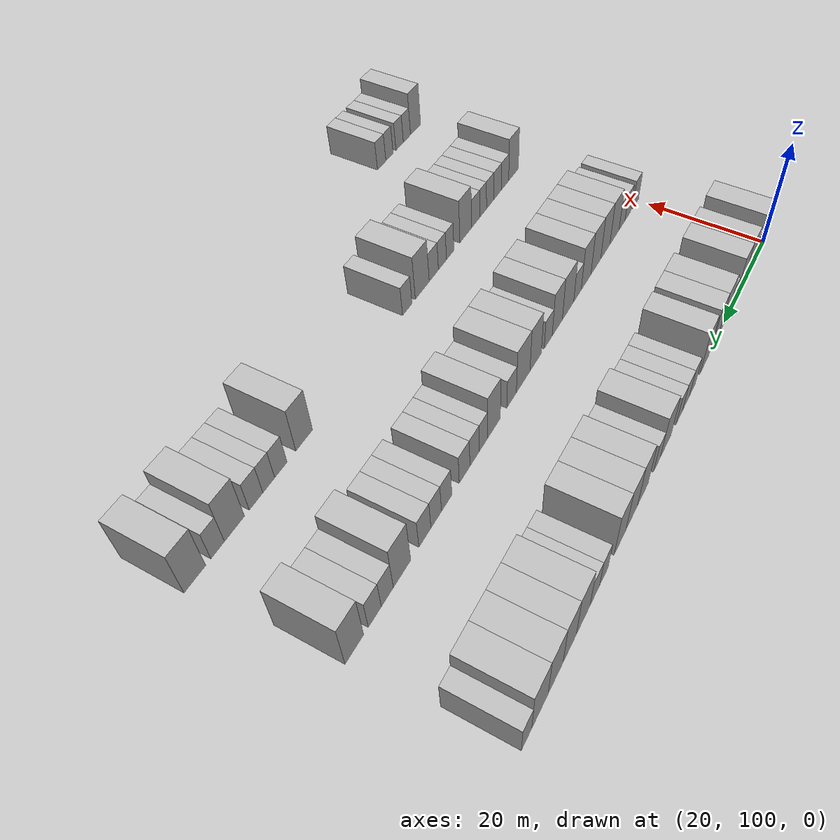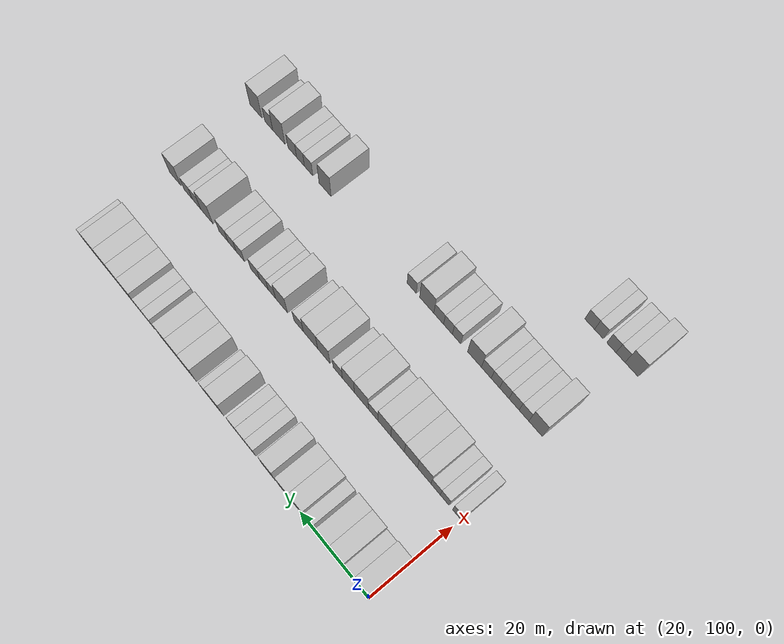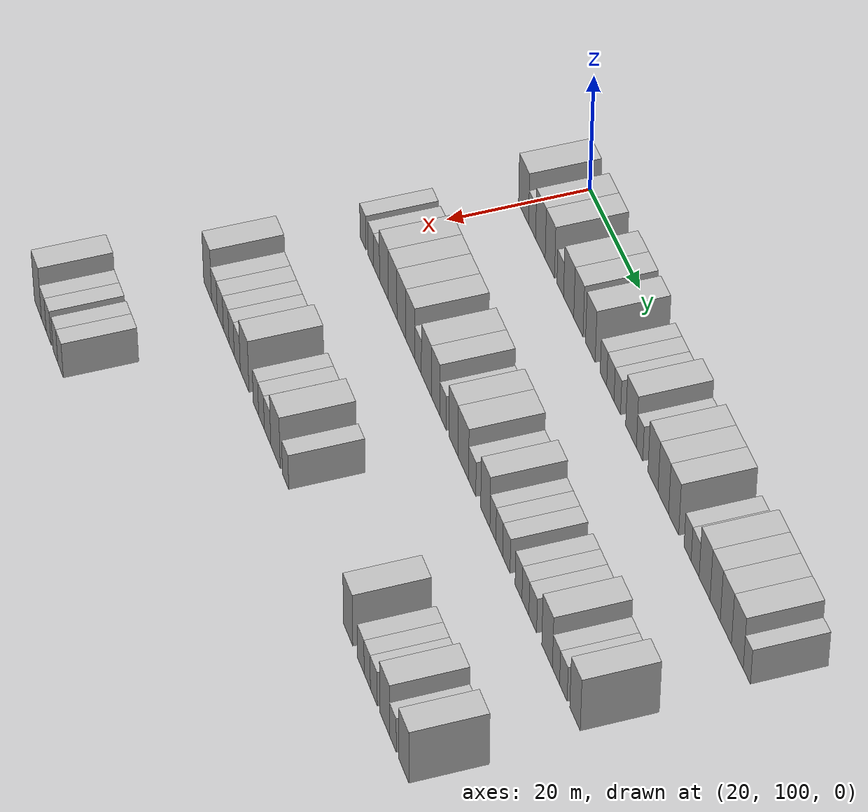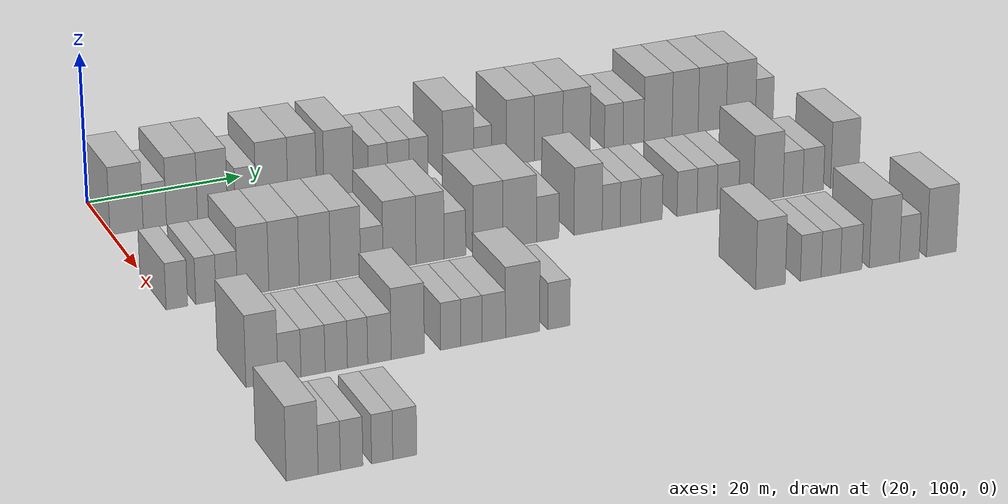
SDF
<sdf version="1.6">
 <world name="default">
  <model name="building_126">
   <static>1</static>
   <pose>25.0000 101.8972 0 0.000000 0.000000 0.000000</pose>
   <link name="link">
    <pose>0 0 4.50 0 0 0</pose>
    <collision name="collision"><geometry><box><size>10.0000 4.2282 9.0000</size></box></geometry></collision>
    <visual name="visual">
     <cast_shadows>0</cast_shadows>
     <geometry><box><size>10.0000 4.2282 9.0000</size></box></geometry>
     <material>
      <script>
       <uri>model://HANNAS_wall/materials/scripts</uri>
       <uri>model://HANNAS_wall/materials/textures</uri>
       <name>vrc/HANNAS_wall</name>
      </script>
     </material>
    </visual>
   </link>
  </model>
  <model name="building_127">
   <static>1</static>
   <pose>25.0000 105.4983 0 0.000000 0.000000 0.000000</pose>
   <link name="link">
    <pose>0 0 3.00 0 0 0</pose>
    <collision name="collision"><geometry><box><size>10.0000 2.9740 6.0000</size></box></geometry></collision>
    <visual name="visual">
     <cast_shadows>0</cast_shadows>
     <geometry><box><size>10.0000 2.9740 6.0000</size></box></geometry>
     <material>
      <script>
       <uri>model://HANNAS_wall/materials/scripts</uri>
       <uri>model://HANNAS_wall/materials/textures</uri>
       <name>vrc/HANNAS_wall</name>
      </script>
     </material>
    </visual>
   </link>
  </model>
  <model name="building_128">
   <static>1</static>
   <pose>25.0000 108.9910 0 0.000000 0.000000 0.000000</pose>
   <link name="link">
    <pose>0 0 4.50 0 0 0</pose>
    <collision name="collision"><geometry><box><size>10.0000 4.0114 9.0000</size></box></geometry></collision>
    <visual name="visual">
     <cast_shadows>0</cast_shadows>
     <geometry><box><size>10.0000 4.0114 9.0000</size></box></geometry>
     <material>
      <script>
       <uri>model://HANNAS_wall/materials/scripts</uri>
       <uri>model://HANNAS_wall/materials/textures</uri>
       <name>vrc/HANNAS_wall</name>
      </script>
     </material>
    </visual>
   </link>
  </model>
  <model name="building_129">
   <static>1</static>
   <pose>25.0000 112.9370 0 0.000000 0.000000 0.000000</pose>
   <link name="link">
    <pose>0 0 4.50 0 0 0</pose>
    <collision name="collision"><geometry><box><size>10.0000 3.8806 9.0000</size></box></geometry></collision>
    <visual name="visual">
     <cast_shadows>0</cast_shadows>
     <geometry><box><size>10.0000 3.8806 9.0000</size></box></geometry>
     <material>
      <script>
       <uri>model://HANNAS_wall/materials/scripts</uri>
       <uri>model://HANNAS_wall/materials/textures</uri>
       <name>vrc/HANNAS_wall</name>
      </script>
     </material>
    </visual>
   </link>
  </model>
  <model name="building_130">
   <static>1</static>
   <pose>25.0000 117.2325 0 0.000000 0.000000 0.000000</pose>
   <link name="link">
    <pose>0 0 3.00 0 0 0</pose>
    <collision name="collision"><geometry><box><size>10.0000 2.7104 6.0000</size></box></geometry></collision>
    <visual name="visual">
     <cast_shadows>0</cast_shadows>
     <geometry><box><size>10.0000 2.7104 6.0000</size></box></geometry>
     <material>
      <script>
       <uri>model://HANNAS_wall/materials/scripts</uri>
       <uri>model://HANNAS_wall/materials/textures</uri>
       <name>vrc/HANNAS_wall</name>
      </script>
     </material>
    </visual>
   </link>
  </model>
  <model name="building_131">
   <static>1</static>
   <pose>25.0000 120.6726 0 0.000000 0.000000 0.000000</pose>
   <link name="link">
    <pose>0 0 4.50 0 0 0</pose>
    <collision name="collision"><geometry><box><size>10.0000 4.1699 9.0000</size></box></geometry></collision>
    <visual name="visual">
     <cast_shadows>0</cast_shadows>
     <geometry><box><size>10.0000 4.1699 9.0000</size></box></geometry>
     <material>
      <script>
       <uri>model://HANNAS_wall/materials/scripts</uri>
       <uri>model://HANNAS_wall/materials/textures</uri>
       <name>vrc/HANNAS_wall</name>
      </script>
     </material>
    </visual>
   </link>
  </model>
  <model name="building_132">
   <static>1</static>
   <pose>25.0000 124.6380 0 0.000000 0.000000 0.000000</pose>
   <link name="link">
    <pose>0 0 4.50 0 0 0</pose>
    <collision name="collision"><geometry><box><size>10.0000 3.7609 9.0000</size></box></geometry></collision>
    <visual name="visual">
     <cast_shadows>0</cast_shadows>
     <geometry><box><size>10.0000 3.7609 9.0000</size></box></geometry>
     <material>
      <script>
       <uri>model://HANNAS_wall/materials/scripts</uri>
       <uri>model://HANNAS_wall/materials/textures</uri>
       <name>vrc/HANNAS_wall</name>
      </script>
     </material>
    </visual>
   </link>
  </model>
  <model name="building_133">
   <static>1</static>
   <pose>25.0000 129.4610 0 0.000000 0.000000 0.000000</pose>
   <link name="link">
    <pose>0 0 4.50 0 0 0</pose>
    <collision name="collision"><geometry><box><size>10.0000 3.8851 9.0000</size></box></geometry></collision>
    <visual name="visual">
     <cast_shadows>0</cast_shadows>
     <geometry><box><size>10.0000 3.8851 9.0000</size></box></geometry>
     <material>
      <script>
       <uri>model://HANNAS_wall/materials/scripts</uri>
       <uri>model://HANNAS_wall/materials/textures</uri>
       <name>vrc/HANNAS_wall</name>
      </script>
     </material>
    </visual>
   </link>
  </model>
  <model name="building_134">
   <static>1</static>
   <pose>25.0000 134.6868 0 0.000000 0.000000 0.000000</pose>
   <link name="link">
    <pose>0 0 3.00 0 0 0</pose>
    <collision name="collision"><geometry><box><size>10.0000 2.5665 6.0000</size></box></geometry></collision>
    <visual name="visual">
     <cast_shadows>0</cast_shadows>
     <geometry><box><size>10.0000 2.5665 6.0000</size></box></geometry>
     <material>
      <script>
       <uri>model://HANNAS_wall/materials/scripts</uri>
       <uri>model://HANNAS_wall/materials/textures</uri>
       <name>vrc/HANNAS_wall</name>
      </script>
     </material>
    </visual>
   </link>
  </model>
  <model name="building_135">
   <static>1</static>
   <pose>25.0000 137.4162 0 0.000000 0.000000 0.000000</pose>
   <link name="link">
    <pose>0 0 3.00 0 0 0</pose>
    <collision name="collision"><geometry><box><size>10.0000 2.8924 6.0000</size></box></geometry></collision>
    <visual name="visual">
     <cast_shadows>0</cast_shadows>
     <geometry><box><size>10.0000 2.8924 6.0000</size></box></geometry>
     <material>
      <script>
       <uri>model://HANNAS_wall/materials/scripts</uri>
       <uri>model://HANNAS_wall/materials/textures</uri>
       <name>vrc/HANNAS_wall</name>
      </script>
     </material>
    </visual>
   </link>
  </model>
  <model name="building_136">
   <static>1</static>
   <pose>25.0000 140.1349 0 0.000000 0.000000 0.000000</pose>
   <link name="link">
    <pose>0 0 3.00 0 0 0</pose>
    <collision name="collision"><geometry><box><size>10.0000 2.5449 6.0000</size></box></geometry></collision>
    <visual name="visual">
     <cast_shadows>0</cast_shadows>
     <geometry><box><size>10.0000 2.5449 6.0000</size></box></geometry>
     <material>
      <script>
       <uri>model://HANNAS_wall/materials/scripts</uri>
       <uri>model://HANNAS_wall/materials/textures</uri>
       <name>vrc/HANNAS_wall</name>
      </script>
     </material>
    </visual>
   </link>
  </model>
  <model name="building_137">
   <static>1</static>
   <pose>25.0000 145.4909 0 0.000000 0.000000 0.000000</pose>
   <link name="link">
    <pose>0 0 4.50 0 0 0</pose>
    <collision name="collision"><geometry><box><size>10.0000 4.1672 9.0000</size></box></geometry></collision>
    <visual name="visual">
     <cast_shadows>0</cast_shadows>
     <geometry><box><size>10.0000 4.1672 9.0000</size></box></geometry>
     <material>
      <script>
       <uri>model://HANNAS_wall/materials/scripts</uri>
       <uri>model://HANNAS_wall/materials/textures</uri>
       <name>vrc/HANNAS_wall</name>
      </script>
     </material>
    </visual>
   </link>
  </model>
  <model name="building_138">
   <static>1</static>
   <pose>25.0000 148.8001 0 0.000000 0.000000 0.000000</pose>
   <link name="link">
    <pose>0 0 3.00 0 0 0</pose>
    <collision name="collision"><geometry><box><size>10.0000 2.4511 6.0000</size></box></geometry></collision>
    <visual name="visual">
     <cast_shadows>0</cast_shadows>
     <geometry><box><size>10.0000 2.4511 6.0000</size></box></geometry>
     <material>
      <script>
       <uri>model://HANNAS_wall/materials/scripts</uri>
       <uri>model://HANNAS_wall/materials/textures</uri>
       <name>vrc/HANNAS_wall</name>
      </script>
     </material>
    </visual>
   </link>
  </model>
  <model name="building_139">
   <static>1</static>
   <pose>25.0000 153.9330 0 0.000000 0.000000 0.000000</pose>
   <link name="link">
    <pose>0 0 4.50 0 0 0</pose>
    <collision name="collision"><geometry><box><size>10.0000 3.8147 9.0000</size></box></geometry></collision>
    <visual name="visual">
     <cast_shadows>0</cast_shadows>
     <geometry><box><size>10.0000 3.8147 9.0000</size></box></geometry>
     <material>
      <script>
       <uri>model://HANNAS_wall/materials/scripts</uri>
       <uri>model://HANNAS_wall/materials/textures</uri>
       <name>vrc/HANNAS_wall</name>
      </script>
     </material>
    </visual>
   </link>
  </model>
  <model name="building_140">
   <static>1</static>
   <pose>25.0000 157.8276 0 0.000000 0.000000 0.000000</pose>
   <link name="link">
    <pose>0 0 4.50 0 0 0</pose>
    <collision name="collision"><geometry><box><size>10.0000 3.9746 9.0000</size></box></geometry></collision>
    <visual name="visual">
     <cast_shadows>0</cast_shadows>
     <geometry><box><size>10.0000 3.9746 9.0000</size></box></geometry>
     <material>
      <script>
       <uri>model://HANNAS_wall/materials/scripts</uri>
       <uri>model://HANNAS_wall/materials/textures</uri>
       <name>vrc/HANNAS_wall</name>
      </script>
     </material>
    </visual>
   </link>
  </model>
  <model name="building_141">
   <static>1</static>
   <pose>25.0000 161.7132 0 0.000000 0.000000 0.000000</pose>
   <link name="link">
    <pose>0 0 4.50 0 0 0</pose>
    <collision name="collision"><geometry><box><size>10.0000 3.7965 9.0000</size></box></geometry></collision>
    <visual name="visual">
     <cast_shadows>0</cast_shadows>
     <geometry><box><size>10.0000 3.7965 9.0000</size></box></geometry>
     <material>
      <script>
       <uri>model://HANNAS_wall/materials/scripts</uri>
       <uri>model://HANNAS_wall/materials/textures</uri>
       <name>vrc/HANNAS_wall</name>
      </script>
     </material>
    </visual>
   </link>
  </model>
  <model name="building_142">
   <static>1</static>
   <pose>25.0000 166.9197 0 0.000000 0.000000 0.000000</pose>
   <link name="link">
    <pose>0 0 3.00 0 0 0</pose>
    <collision name="collision"><geometry><box><size>10.0000 2.6166 6.0000</size></box></geometry></collision>
    <visual name="visual">
     <cast_shadows>0</cast_shadows>
     <geometry><box><size>10.0000 2.6166 6.0000</size></box></geometry>
     <material>
      <script>
       <uri>model://HANNAS_wall/materials/scripts</uri>
       <uri>model://HANNAS_wall/materials/textures</uri>
       <name>vrc/HANNAS_wall</name>
      </script>
     </material>
    </visual>
   </link>
  </model>
  <model name="building_143">
   <static>1</static>
   <pose>25.0000 169.6854 0 0.000000 0.000000 0.000000</pose>
   <link name="link">
    <pose>0 0 3.00 0 0 0</pose>
    <collision name="collision"><geometry><box><size>10.0000 2.9149 6.0000</size></box></geometry></collision>
    <visual name="visual">
     <cast_shadows>0</cast_shadows>
     <geometry><box><size>10.0000 2.9149 6.0000</size></box></geometry>
     <material>
      <script>
       <uri>model://HANNAS_wall/materials/scripts</uri>
       <uri>model://HANNAS_wall/materials/textures</uri>
       <name>vrc/HANNAS_wall</name>
      </script>
     </material>
    </visual>
   </link>
  </model>
  <model name="building_144">
   <static>1</static>
   <pose>25.0000 173.1345 0 0.000000 0.000000 0.000000</pose>
   <link name="link">
    <pose>0 0 4.50 0 0 0</pose>
    <collision name="collision"><geometry><box><size>10.0000 3.9831 9.0000</size></box></geometry></collision>
    <visual name="visual">
     <cast_shadows>0</cast_shadows>
     <geometry><box><size>10.0000 3.9831 9.0000</size></box></geometry>
     <material>
      <script>
       <uri>model://HANNAS_wall/materials/scripts</uri>
       <uri>model://HANNAS_wall/materials/textures</uri>
       <name>vrc/HANNAS_wall</name>
      </script>
     </material>
    </visual>
   </link>
  </model>
  <model name="building_145">
   <static>1</static>
   <pose>25.0000 176.9775 0 0.000000 0.000000 0.000000</pose>
   <link name="link">
    <pose>0 0 4.50 0 0 0</pose>
    <collision name="collision"><geometry><box><size>10.0000 3.7030 9.0000</size></box></geometry></collision>
    <visual name="visual">
     <cast_shadows>0</cast_shadows>
     <geometry><box><size>10.0000 3.7030 9.0000</size></box></geometry>
     <material>
      <script>
       <uri>model://HANNAS_wall/materials/scripts</uri>
       <uri>model://HANNAS_wall/materials/textures</uri>
       <name>vrc/HANNAS_wall</name>
      </script>
     </material>
    </visual>
   </link>
  </model>
  <model name="building_146">
   <static>1</static>
   <pose>25.0000 180.8270 0 0.000000 0.000000 0.000000</pose>
   <link name="link">
    <pose>0 0 4.50 0 0 0</pose>
    <collision name="collision"><geometry><box><size>10.0000 3.9960 9.0000</size></box></geometry></collision>
    <visual name="visual">
     <cast_shadows>0</cast_shadows>
     <geometry><box><size>10.0000 3.9960 9.0000</size></box></geometry>
     <material>
      <script>
       <uri>model://HANNAS_wall/materials/scripts</uri>
       <uri>model://HANNAS_wall/materials/textures</uri>
       <name>vrc/HANNAS_wall</name>
      </script>
     </material>
    </visual>
   </link>
  </model>
  <model name="building_147">
   <static>1</static>
   <pose>25.0000 184.9330 0 0.000000 0.000000 0.000000</pose>
   <link name="link">
    <pose>0 0 4.50 0 0 0</pose>
    <collision name="collision"><geometry><box><size>10.0000 4.2160 9.0000</size></box></geometry></collision>
    <visual name="visual">
     <cast_shadows>0</cast_shadows>
     <geometry><box><size>10.0000 4.2160 9.0000</size></box></geometry>
     <material>
      <script>
       <uri>model://HANNAS_wall/materials/scripts</uri>
       <uri>model://HANNAS_wall/materials/textures</uri>
       <name>vrc/HANNAS_wall</name>
      </script>
     </material>
    </visual>
   </link>
  </model>
  <model name="building_148">
   <static>1</static>
   <pose>25.0000 188.3178 0 0.000000 0.000000 0.000000</pose>
   <link name="link">
    <pose>0 0 3.00 0 0 0</pose>
    <collision name="collision"><geometry><box><size>10.0000 2.5535 6.0000</size></box></geometry></collision>
    <visual name="visual">
     <cast_shadows>0</cast_shadows>
     <geometry><box><size>10.0000 2.5535 6.0000</size></box></geometry>
     <material>
      <script>
       <uri>model://HANNAS_wall/materials/scripts</uri>
       <uri>model://HANNAS_wall/materials/textures</uri>
       <name>vrc/HANNAS_wall</name>
      </script>
     </material>
    </visual>
   </link>
  </model>
  <model name="building_313">
   <static>1</static>
   <pose>47.0000 101.0420 0 0.000000 0.000000 0.000000</pose>
   <link name="link">
    <pose>0 0 3.00 0 0 0</pose>
    <collision name="collision"><geometry><box><size>10.0000 2.6449 6.0000</size></box></geometry></collision>
    <visual name="visual">
     <cast_shadows>0</cast_shadows>
     <geometry><box><size>10.0000 2.6449 6.0000</size></box></geometry>
     <material>
      <script>
       <uri>model://HANNAS_wall/materials/scripts</uri>
       <uri>model://HANNAS_wall/materials/textures</uri>
       <name>vrc/HANNAS_wall</name>
      </script>
     </material>
    </visual>
   </link>
  </model>
  <model name="building_314">
   <static>1</static>
   <pose>47.0000 104.6172 0 0.000000 0.000000 0.000000</pose>
   <link name="link">
    <pose>0 0 3.00 0 0 0</pose>
    <collision name="collision"><geometry><box><size>10.0000 2.5055 6.0000</size></box></geometry></collision>
    <visual name="visual">
     <cast_shadows>0</cast_shadows>
     <geometry><box><size>10.0000 2.5055 6.0000</size></box></geometry>
     <material>
      <script>
       <uri>model://HANNAS_wall/materials/scripts</uri>
       <uri>model://HANNAS_wall/materials/textures</uri>
       <name>vrc/HANNAS_wall</name>
      </script>
     </material>
    </visual>
   </link>
  </model>
  <model name="building_315">
   <static>1</static>
   <pose>47.0000 107.2020 0 0.000000 0.000000 0.000000</pose>
   <link name="link">
    <pose>0 0 3.00 0 0 0</pose>
    <collision name="collision"><geometry><box><size>10.0000 2.6642 6.0000</size></box></geometry></collision>
    <visual name="visual">
     <cast_shadows>0</cast_shadows>
     <geometry><box><size>10.0000 2.6642 6.0000</size></box></geometry>
     <material>
      <script>
       <uri>model://HANNAS_wall/materials/scripts</uri>
       <uri>model://HANNAS_wall/materials/textures</uri>
       <name>vrc/HANNAS_wall</name>
      </script>
     </material>
    </visual>
   </link>
  </model>
  <model name="building_316">
   <static>1</static>
   <pose>47.0000 110.4907 0 0.000000 0.000000 0.000000</pose>
   <link name="link">
    <pose>0 0 4.50 0 0 0</pose>
    <collision name="collision"><geometry><box><size>10.0000 3.9131 9.0000</size></box></geometry></collision>
    <visual name="visual">
     <cast_shadows>0</cast_shadows>
     <geometry><box><size>10.0000 3.9131 9.0000</size></box></geometry>
     <material>
      <script>
       <uri>model://HANNAS_wall/materials/scripts</uri>
       <uri>model://HANNAS_wall/materials/textures</uri>
       <name>vrc/HANNAS_wall</name>
      </script>
     </material>
    </visual>
   </link>
  </model>
  <model name="building_317">
   <static>1</static>
   <pose>47.0000 114.3489 0 0.000000 0.000000 0.000000</pose>
   <link name="link">
    <pose>0 0 4.50 0 0 0</pose>
    <collision name="collision"><geometry><box><size>10.0000 3.8033 9.0000</size></box></geometry></collision>
    <visual name="visual">
     <cast_shadows>0</cast_shadows>
     <geometry><box><size>10.0000 3.8033 9.0000</size></box></geometry>
     <material>
      <script>
       <uri>model://HANNAS_wall/materials/scripts</uri>
       <uri>model://HANNAS_wall/materials/textures</uri>
       <name>vrc/HANNAS_wall</name>
      </script>
     </material>
    </visual>
   </link>
  </model>
  <model name="building_318">
   <static>1</static>
   <pose>47.0000 118.2258 0 0.000000 0.000000 0.000000</pose>
   <link name="link">
    <pose>0 0 4.50 0 0 0</pose>
    <collision name="collision"><geometry><box><size>10.0000 3.9504 9.0000</size></box></geometry></collision>
    <visual name="visual">
     <cast_shadows>0</cast_shadows>
     <geometry><box><size>10.0000 3.9504 9.0000</size></box></geometry>
     <material>
      <script>
       <uri>model://HANNAS_wall/materials/scripts</uri>
       <uri>model://HANNAS_wall/materials/textures</uri>
       <name>vrc/HANNAS_wall</name>
      </script>
     </material>
    </visual>
   </link>
  </model>
  <model name="building_319">
   <static>1</static>
   <pose>47.0000 122.1043 0 0.000000 0.000000 0.000000</pose>
   <link name="link">
    <pose>0 0 4.50 0 0 0</pose>
    <collision name="collision"><geometry><box><size>10.0000 3.8067 9.0000</size></box></geometry></collision>
    <visual name="visual">
     <cast_shadows>0</cast_shadows>
     <geometry><box><size>10.0000 3.8067 9.0000</size></box></geometry>
     <material>
      <script>
       <uri>model://HANNAS_wall/materials/scripts</uri>
       <uri>model://HANNAS_wall/materials/textures</uri>
       <name>vrc/HANNAS_wall</name>
      </script>
     </material>
    </visual>
   </link>
  </model>
  <model name="building_320">
   <static>1</static>
   <pose>47.0000 125.4434 0 0.000000 0.000000 0.000000</pose>
   <link name="link">
    <pose>0 0 3.00 0 0 0</pose>
    <collision name="collision"><geometry><box><size>10.0000 2.8714 6.0000</size></box></geometry></collision>
    <visual name="visual">
     <cast_shadows>0</cast_shadows>
     <geometry><box><size>10.0000 2.8714 6.0000</size></box></geometry>
     <material>
      <script>
       <uri>model://HANNAS_wall/materials/scripts</uri>
       <uri>model://HANNAS_wall/materials/textures</uri>
       <name>vrc/HANNAS_wall</name>
      </script>
     </material>
    </visual>
   </link>
  </model>
  <model name="building_321">
   <static>1</static>
   <pose>47.0000 128.9827 0 0.000000 0.000000 0.000000</pose>
   <link name="link">
    <pose>0 0 4.50 0 0 0</pose>
    <collision name="collision"><geometry><box><size>10.0000 4.2073 9.0000</size></box></geometry></collision>
    <visual name="visual">
     <cast_shadows>0</cast_shadows>
     <geometry><box><size>10.0000 4.2073 9.0000</size></box></geometry>
     <material>
      <script>
       <uri>model://HANNAS_wall/materials/scripts</uri>
       <uri>model://HANNAS_wall/materials/textures</uri>
       <name>vrc/HANNAS_wall</name>
      </script>
     </material>
    </visual>
   </link>
  </model>
  <model name="building_322">
   <static>1</static>
   <pose>47.0000 132.9044 0 0.000000 0.000000 0.000000</pose>
   <link name="link">
    <pose>0 0 4.50 0 0 0</pose>
    <collision name="collision"><geometry><box><size>10.0000 3.6361 9.0000</size></box></geometry></collision>
    <visual name="visual">
     <cast_shadows>0</cast_shadows>
     <geometry><box><size>10.0000 3.6361 9.0000</size></box></geometry>
     <material>
      <script>
       <uri>model://HANNAS_wall/materials/scripts</uri>
       <uri>model://HANNAS_wall/materials/textures</uri>
       <name>vrc/HANNAS_wall</name>
      </script>
     </material>
    </visual>
   </link>
  </model>
  <model name="building_323">
   <static>1</static>
   <pose>47.0000 136.1226 0 0.000000 0.000000 0.000000</pose>
   <link name="link">
    <pose>0 0 3.00 0 0 0</pose>
    <collision name="collision"><geometry><box><size>10.0000 2.8003 6.0000</size></box></geometry></collision>
    <visual name="visual">
     <cast_shadows>0</cast_shadows>
     <geometry><box><size>10.0000 2.8003 6.0000</size></box></geometry>
     <material>
      <script>
       <uri>model://HANNAS_wall/materials/scripts</uri>
       <uri>model://HANNAS_wall/materials/textures</uri>
       <name>vrc/HANNAS_wall</name>
      </script>
     </material>
    </visual>
   </link>
  </model>
  <model name="building_324">
   <static>1</static>
   <pose>47.0000 140.4289 0 0.000000 0.000000 0.000000</pose>
   <link name="link">
    <pose>0 0 4.50 0 0 0</pose>
    <collision name="collision"><geometry><box><size>10.0000 3.8124 9.0000</size></box></geometry></collision>
    <visual name="visual">
     <cast_shadows>0</cast_shadows>
     <geometry><box><size>10.0000 3.8124 9.0000</size></box></geometry>
     <material>
      <script>
       <uri>model://HANNAS_wall/materials/scripts</uri>
       <uri>model://HANNAS_wall/materials/textures</uri>
       <name>vrc/HANNAS_wall</name>
      </script>
     </material>
    </visual>
   </link>
  </model>
  <model name="building_325">
   <static>1</static>
   <pose>47.0000 144.5449 0 0.000000 0.000000 0.000000</pose>
   <link name="link">
    <pose>0 0 4.50 0 0 0</pose>
    <collision name="collision"><geometry><box><size>10.0000 4.4196 9.0000</size></box></geometry></collision>
    <visual name="visual">
     <cast_shadows>0</cast_shadows>
     <geometry><box><size>10.0000 4.4196 9.0000</size></box></geometry>
     <material>
      <script>
       <uri>model://HANNAS_wall/materials/scripts</uri>
       <uri>model://HANNAS_wall/materials/textures</uri>
       <name>vrc/HANNAS_wall</name>
      </script>
     </material>
    </visual>
   </link>
  </model>
  <model name="building_326">
   <static>1</static>
   <pose>47.0000 148.2421 0 0.000000 0.000000 0.000000</pose>
   <link name="link">
    <pose>0 0 3.00 0 0 0</pose>
    <collision name="collision"><geometry><box><size>10.0000 2.9748 6.0000</size></box></geometry></collision>
    <visual name="visual">
     <cast_shadows>0</cast_shadows>
     <geometry><box><size>10.0000 2.9748 6.0000</size></box></geometry>
     <material>
      <script>
       <uri>model://HANNAS_wall/materials/scripts</uri>
       <uri>model://HANNAS_wall/materials/textures</uri>
       <name>vrc/HANNAS_wall</name>
      </script>
     </material>
    </visual>
   </link>
  </model>
  <model name="building_327">
   <static>1</static>
   <pose>47.0000 153.6075 0 0.000000 0.000000 0.000000</pose>
   <link name="link">
    <pose>0 0 4.50 0 0 0</pose>
    <collision name="collision"><geometry><box><size>10.0000 3.7561 9.0000</size></box></geometry></collision>
    <visual name="visual">
     <cast_shadows>0</cast_shadows>
     <geometry><box><size>10.0000 3.7561 9.0000</size></box></geometry>
     <material>
      <script>
       <uri>model://HANNAS_wall/materials/scripts</uri>
       <uri>model://HANNAS_wall/materials/textures</uri>
       <name>vrc/HANNAS_wall</name>
      </script>
     </material>
    </visual>
   </link>
  </model>
  <model name="building_328">
   <static>1</static>
   <pose>47.0000 156.6892 0 0.000000 0.000000 0.000000</pose>
   <link name="link">
    <pose>0 0 3.00 0 0 0</pose>
    <collision name="collision"><geometry><box><size>10.0000 2.4074 6.0000</size></box></geometry></collision>
    <visual name="visual">
     <cast_shadows>0</cast_shadows>
     <geometry><box><size>10.0000 2.4074 6.0000</size></box></geometry>
     <material>
      <script>
       <uri>model://HANNAS_wall/materials/scripts</uri>
       <uri>model://HANNAS_wall/materials/textures</uri>
       <name>vrc/HANNAS_wall</name>
      </script>
     </material>
    </visual>
   </link>
  </model>
  <model name="building_329">
   <static>1</static>
   <pose>47.0000 159.2460 0 0.000000 0.000000 0.000000</pose>
   <link name="link">
    <pose>0 0 3.00 0 0 0</pose>
    <collision name="collision"><geometry><box><size>10.0000 2.7062 6.0000</size></box></geometry></collision>
    <visual name="visual">
     <cast_shadows>0</cast_shadows>
     <geometry><box><size>10.0000 2.7062 6.0000</size></box></geometry>
     <material>
      <script>
       <uri>model://HANNAS_wall/materials/scripts</uri>
       <uri>model://HANNAS_wall/materials/textures</uri>
       <name>vrc/HANNAS_wall</name>
      </script>
     </material>
    </visual>
   </link>
  </model>
  <model name="building_330">
   <static>1</static>
   <pose>47.0000 162.0708 0 0.000000 0.000000 0.000000</pose>
   <link name="link">
    <pose>0 0 3.00 0 0 0</pose>
    <collision name="collision"><geometry><box><size>10.0000 2.9434 6.0000</size></box></geometry></collision>
    <visual name="visual">
     <cast_shadows>0</cast_shadows>
     <geometry><box><size>10.0000 2.9434 6.0000</size></box></geometry>
     <material>
      <script>
       <uri>model://HANNAS_wall/materials/scripts</uri>
       <uri>model://HANNAS_wall/materials/textures</uri>
       <name>vrc/HANNAS_wall</name>
      </script>
     </material>
    </visual>
   </link>
  </model>
  <model name="building_331">
   <static>1</static>
   <pose>47.0000 166.9011 0 0.000000 0.000000 0.000000</pose>
   <link name="link">
    <pose>0 0 3.00 0 0 0</pose>
    <collision name="collision"><geometry><box><size>10.0000 2.7172 6.0000</size></box></geometry></collision>
    <visual name="visual">
     <cast_shadows>0</cast_shadows>
     <geometry><box><size>10.0000 2.7172 6.0000</size></box></geometry>
     <material>
      <script>
       <uri>model://HANNAS_wall/materials/scripts</uri>
       <uri>model://HANNAS_wall/materials/textures</uri>
       <name>vrc/HANNAS_wall</name>
      </script>
     </material>
    </visual>
   </link>
  </model>
  <model name="building_332">
   <static>1</static>
   <pose>47.0000 169.6182 0 0.000000 0.000000 0.000000</pose>
   <link name="link">
    <pose>0 0 3.00 0 0 0</pose>
    <collision name="collision"><geometry><box><size>10.0000 2.7171 6.0000</size></box></geometry></collision>
    <visual name="visual">
     <cast_shadows>0</cast_shadows>
     <geometry><box><size>10.0000 2.7171 6.0000</size></box></geometry>
     <material>
      <script>
       <uri>model://HANNAS_wall/materials/scripts</uri>
       <uri>model://HANNAS_wall/materials/textures</uri>
       <name>vrc/HANNAS_wall</name>
      </script>
     </material>
    </visual>
   </link>
  </model>
  <model name="building_333">
   <static>1</static>
   <pose>47.0000 172.4735 0 0.000000 0.000000 0.000000</pose>
   <link name="link">
    <pose>0 0 3.00 0 0 0</pose>
    <collision name="collision"><geometry><box><size>10.0000 2.9934 6.0000</size></box></geometry></collision>
    <visual name="visual">
     <cast_shadows>0</cast_shadows>
     <geometry><box><size>10.0000 2.9934 6.0000</size></box></geometry>
     <material>
      <script>
       <uri>model://HANNAS_wall/materials/scripts</uri>
       <uri>model://HANNAS_wall/materials/textures</uri>
       <name>vrc/HANNAS_wall</name>
      </script>
     </material>
    </visual>
   </link>
  </model>
  <model name="building_334">
   <static>1</static>
   <pose>47.0000 178.0173 0 0.000000 0.000000 0.000000</pose>
   <link name="link">
    <pose>0 0 4.50 0 0 0</pose>
    <collision name="collision"><geometry><box><size>10.0000 4.0943 9.0000</size></box></geometry></collision>
    <visual name="visual">
     <cast_shadows>0</cast_shadows>
     <geometry><box><size>10.0000 4.0943 9.0000</size></box></geometry>
     <material>
      <script>
       <uri>model://HANNAS_wall/materials/scripts</uri>
       <uri>model://HANNAS_wall/materials/textures</uri>
       <name>vrc/HANNAS_wall</name>
      </script>
     </material>
    </visual>
   </link>
  </model>
  <model name="building_335">
   <static>1</static>
   <pose>47.0000 181.4345 0 0.000000 0.000000 0.000000</pose>
   <link name="link">
    <pose>0 0 3.00 0 0 0</pose>
    <collision name="collision"><geometry><box><size>10.0000 2.7401 6.0000</size></box></geometry></collision>
    <visual name="visual">
     <cast_shadows>0</cast_shadows>
     <geometry><box><size>10.0000 2.7401 6.0000</size></box></geometry>
     <material>
      <script>
       <uri>model://HANNAS_wall/materials/scripts</uri>
       <uri>model://HANNAS_wall/materials/textures</uri>
       <name>vrc/HANNAS_wall</name>
      </script>
     </material>
    </visual>
   </link>
  </model>
  <model name="building_336">
   <static>1</static>
   <pose>47.0000 184.2372 0 0.000000 0.000000 0.000000</pose>
   <link name="link">
    <pose>0 0 3.00 0 0 0</pose>
    <collision name="collision"><geometry><box><size>10.0000 2.8654 6.0000</size></box></geometry></collision>
    <visual name="visual">
     <cast_shadows>0</cast_shadows>
     <geometry><box><size>10.0000 2.8654 6.0000</size></box></geometry>
     <material>
      <script>
       <uri>model://HANNAS_wall/materials/scripts</uri>
       <uri>model://HANNAS_wall/materials/textures</uri>
       <name>vrc/HANNAS_wall</name>
      </script>
     </material>
    </visual>
   </link>
  </model>
  <model name="building_337">
   <static>1</static>
   <pose>47.0000 188.6330 0 0.000000 0.000000 0.000000</pose>
   <link name="link">
    <pose>0 0 4.50 0 0 0</pose>
    <collision name="collision"><geometry><box><size>10.0000 3.9262 9.0000</size></box></geometry></collision>
    <visual name="visual">
     <cast_shadows>0</cast_shadows>
     <geometry><box><size>10.0000 3.9262 9.0000</size></box></geometry>
     <material>
      <script>
       <uri>model://HANNAS_wall/materials/scripts</uri>
       <uri>model://HANNAS_wall/materials/textures</uri>
       <name>vrc/HANNAS_wall</name>
      </script>
     </material>
    </visual>
   </link>
  </model>
  <model name="building_514">
   <static>1</static>
   <pose>69.0000 103.8057 0 0.000000 0.000000 0.000000</pose>
   <link name="link">
    <pose>0 0 4.50 0 0 0</pose>
    <collision name="collision"><geometry><box><size>10.0000 3.8018 9.0000</size></box></geometry></collision>
    <visual name="visual">
     <cast_shadows>0</cast_shadows>
     <geometry><box><size>10.0000 3.8018 9.0000</size></box></geometry>
     <material>
      <script>
       <uri>model://HANNAS_wall/materials/scripts</uri>
       <uri>model://HANNAS_wall/materials/textures</uri>
       <name>vrc/HANNAS_wall</name>
      </script>
     </material>
    </visual>
   </link>
  </model>
  <model name="building_515">
   <static>1</static>
   <pose>69.0000 107.0868 0 0.000000 0.000000 0.000000</pose>
   <link name="link">
    <pose>0 0 3.00 0 0 0</pose>
    <collision name="collision"><geometry><box><size>10.0000 2.7604 6.0000</size></box></geometry></collision>
    <visual name="visual">
     <cast_shadows>0</cast_shadows>
     <geometry><box><size>10.0000 2.7604 6.0000</size></box></geometry>
     <material>
      <script>
       <uri>model://HANNAS_wall/materials/scripts</uri>
       <uri>model://HANNAS_wall/materials/textures</uri>
       <name>vrc/HANNAS_wall</name>
      </script>
     </material>
    </visual>
   </link>
  </model>
  <model name="building_516">
   <static>1</static>
   <pose>69.0000 109.9161 0 0.000000 0.000000 0.000000</pose>
   <link name="link">
    <pose>0 0 3.00 0 0 0</pose>
    <collision name="collision"><geometry><box><size>10.0000 2.8983 6.0000</size></box></geometry></collision>
    <visual name="visual">
     <cast_shadows>0</cast_shadows>
     <geometry><box><size>10.0000 2.8983 6.0000</size></box></geometry>
     <material>
      <script>
       <uri>model://HANNAS_wall/materials/scripts</uri>
       <uri>model://HANNAS_wall/materials/textures</uri>
       <name>vrc/HANNAS_wall</name>
      </script>
     </material>
    </visual>
   </link>
  </model>
  <model name="building_517">
   <static>1</static>
   <pose>69.0000 112.7135 0 0.000000 0.000000 0.000000</pose>
   <link name="link">
    <pose>0 0 3.00 0 0 0</pose>
    <collision name="collision"><geometry><box><size>10.0000 2.6965 6.0000</size></box></geometry></collision>
    <visual name="visual">
     <cast_shadows>0</cast_shadows>
     <geometry><box><size>10.0000 2.6965 6.0000</size></box></geometry>
     <material>
      <script>
       <uri>model://HANNAS_wall/materials/scripts</uri>
       <uri>model://HANNAS_wall/materials/textures</uri>
       <name>vrc/HANNAS_wall</name>
      </script>
     </material>
    </visual>
   </link>
  </model>
  <model name="building_518">
   <static>1</static>
   <pose>69.0000 115.2900 0 0.000000 0.000000 0.000000</pose>
   <link name="link">
    <pose>0 0 3.00 0 0 0</pose>
    <collision name="collision"><geometry><box><size>10.0000 2.4566 6.0000</size></box></geometry></collision>
    <visual name="visual">
     <cast_shadows>0</cast_shadows>
     <geometry><box><size>10.0000 2.4566 6.0000</size></box></geometry>
     <material>
      <script>
       <uri>model://HANNAS_wall/materials/scripts</uri>
       <uri>model://HANNAS_wall/materials/textures</uri>
       <name>vrc/HANNAS_wall</name>
      </script>
     </material>
    </visual>
   </link>
  </model>
  <model name="building_519">
   <static>1</static>
   <pose>69.0000 117.9473 0 0.000000 0.000000 0.000000</pose>
   <link name="link">
    <pose>0 0 3.00 0 0 0</pose>
    <collision name="collision"><geometry><box><size>10.0000 2.8579 6.0000</size></box></geometry></collision>
    <visual name="visual">
     <cast_shadows>0</cast_shadows>
     <geometry><box><size>10.0000 2.8579 6.0000</size></box></geometry>
     <material>
      <script>
       <uri>model://HANNAS_wall/materials/scripts</uri>
       <uri>model://HANNAS_wall/materials/textures</uri>
       <name>vrc/HANNAS_wall</name>
      </script>
     </material>
    </visual>
   </link>
  </model>
  <model name="building_520">
   <static>1</static>
   <pose>69.0000 121.4070 0 0.000000 0.000000 0.000000</pose>
   <link name="link">
    <pose>0 0 4.50 0 0 0</pose>
    <collision name="collision"><geometry><box><size>10.0000 4.0615 9.0000</size></box></geometry></collision>
    <visual name="visual">
     <cast_shadows>0</cast_shadows>
     <geometry><box><size>10.0000 4.0615 9.0000</size></box></geometry>
     <material>
      <script>
       <uri>model://HANNAS_wall/materials/scripts</uri>
       <uri>model://HANNAS_wall/materials/textures</uri>
       <name>vrc/HANNAS_wall</name>
      </script>
     </material>
    </visual>
   </link>
  </model>
  <model name="building_521">
   <static>1</static>
   <pose>69.0000 126.6845 0 0.000000 0.000000 0.000000</pose>
   <link name="link">
    <pose>0 0 3.00 0 0 0</pose>
    <collision name="collision"><geometry><box><size>10.0000 2.4936 6.0000</size></box></geometry></collision>
    <visual name="visual">
     <cast_shadows>0</cast_shadows>
     <geometry><box><size>10.0000 2.4936 6.0000</size></box></geometry>
     <material>
      <script>
       <uri>model://HANNAS_wall/materials/scripts</uri>
       <uri>model://HANNAS_wall/materials/textures</uri>
       <name>vrc/HANNAS_wall</name>
      </script>
     </material>
    </visual>
   </link>
  </model>
  <model name="building_522">
   <static>1</static>
   <pose>69.0000 129.2369 0 0.000000 0.000000 0.000000</pose>
   <link name="link">
    <pose>0 0 3.00 0 0 0</pose>
    <collision name="collision"><geometry><box><size>10.0000 2.6112 6.0000</size></box></geometry></collision>
    <visual name="visual">
     <cast_shadows>0</cast_shadows>
     <geometry><box><size>10.0000 2.6112 6.0000</size></box></geometry>
     <material>
      <script>
       <uri>model://HANNAS_wall/materials/scripts</uri>
       <uri>model://HANNAS_wall/materials/textures</uri>
       <name>vrc/HANNAS_wall</name>
      </script>
     </material>
    </visual>
   </link>
  </model>
  <model name="building_523">
   <static>1</static>
   <pose>69.0000 132.0118 0 0.000000 0.000000 0.000000</pose>
   <link name="link">
    <pose>0 0 3.00 0 0 0</pose>
    <collision name="collision"><geometry><box><size>10.0000 2.9385 6.0000</size></box></geometry></collision>
    <visual name="visual">
     <cast_shadows>0</cast_shadows>
     <geometry><box><size>10.0000 2.9385 6.0000</size></box></geometry>
     <material>
      <script>
       <uri>model://HANNAS_wall/materials/scripts</uri>
       <uri>model://HANNAS_wall/materials/textures</uri>
       <name>vrc/HANNAS_wall</name>
      </script>
     </material>
    </visual>
   </link>
  </model>
  <model name="building_524">
   <static>1</static>
   <pose>69.0000 135.6267 0 0.000000 0.000000 0.000000</pose>
   <link name="link">
    <pose>0 0 4.50 0 0 0</pose>
    <collision name="collision"><geometry><box><size>10.0000 4.2914 9.0000</size></box></geometry></collision>
    <visual name="visual">
     <cast_shadows>0</cast_shadows>
     <geometry><box><size>10.0000 4.2914 9.0000</size></box></geometry>
     <material>
      <script>
       <uri>model://HANNAS_wall/materials/scripts</uri>
       <uri>model://HANNAS_wall/materials/textures</uri>
       <name>vrc/HANNAS_wall</name>
      </script>
     </material>
    </visual>
   </link>
  </model>
  <model name="building_525">
   <static>1</static>
   <pose>69.0000 140.1757 0 0.000000 0.000000 0.000000</pose>
   <link name="link">
    <pose>0 0 3.00 0 0 0</pose>
    <collision name="collision"><geometry><box><size>10.0000 2.8065 6.0000</size></box></geometry></collision>
    <visual name="visual">
     <cast_shadows>0</cast_shadows>
     <geometry><box><size>10.0000 2.8065 6.0000</size></box></geometry>
     <material>
      <script>
       <uri>model://HANNAS_wall/materials/scripts</uri>
       <uri>model://HANNAS_wall/materials/textures</uri>
       <name>vrc/HANNAS_wall</name>
      </script>
     </material>
    </visual>
   </link>
  </model>
  <model name="building_526">
   <static>1</static>
   <pose>69.0000 167.4427 0 0.000000 0.000000 0.000000</pose>
   <link name="link">
    <pose>0 0 4.50 0 0 0</pose>
    <collision name="collision"><geometry><box><size>10.0000 3.9092 9.0000</size></box></geometry></collision>
    <visual name="visual">
     <cast_shadows>0</cast_shadows>
     <geometry><box><size>10.0000 3.9092 9.0000</size></box></geometry>
     <material>
      <script>
       <uri>model://HANNAS_wall/materials/scripts</uri>
       <uri>model://HANNAS_wall/materials/textures</uri>
       <name>vrc/HANNAS_wall</name>
      </script>
     </material>
    </visual>
   </link>
  </model>
  <model name="building_527">
   <static>1</static>
   <pose>69.0000 172.7750 0 0.000000 0.000000 0.000000</pose>
   <link name="link">
    <pose>0 0 3.00 0 0 0</pose>
    <collision name="collision"><geometry><box><size>10.0000 2.7552 6.0000</size></box></geometry></collision>
    <visual name="visual">
     <cast_shadows>0</cast_shadows>
     <geometry><box><size>10.0000 2.7552 6.0000</size></box></geometry>
     <material>
      <script>
       <uri>model://HANNAS_wall/materials/scripts</uri>
       <uri>model://HANNAS_wall/materials/textures</uri>
       <name>vrc/HANNAS_wall</name>
      </script>
     </material>
    </visual>
   </link>
  </model>
  <model name="building_528">
   <static>1</static>
   <pose>69.0000 175.4373 0 0.000000 0.000000 0.000000</pose>
   <link name="link">
    <pose>0 0 3.00 0 0 0</pose>
    <collision name="collision"><geometry><box><size>10.0000 2.5695 6.0000</size></box></geometry></collision>
    <visual name="visual">
     <cast_shadows>0</cast_shadows>
     <geometry><box><size>10.0000 2.5695 6.0000</size></box></geometry>
     <material>
      <script>
       <uri>model://HANNAS_wall/materials/scripts</uri>
       <uri>model://HANNAS_wall/materials/textures</uri>
       <name>vrc/HANNAS_wall</name>
      </script>
     </material>
    </visual>
   </link>
  </model>
  <model name="building_529">
   <static>1</static>
   <pose>69.0000 178.1579 0 0.000000 0.000000 0.000000</pose>
   <link name="link">
    <pose>0 0 3.00 0 0 0</pose>
    <collision name="collision"><geometry><box><size>10.0000 2.8717 6.0000</size></box></geometry></collision>
    <visual name="visual">
     <cast_shadows>0</cast_shadows>
     <geometry><box><size>10.0000 2.8717 6.0000</size></box></geometry>
     <material>
      <script>
       <uri>model://HANNAS_wall/materials/scripts</uri>
       <uri>model://HANNAS_wall/materials/textures</uri>
       <name>vrc/HANNAS_wall</name>
      </script>
     </material>
    </visual>
   </link>
  </model>
  <model name="building_530">
   <static>1</static>
   <pose>69.0000 182.6218 0 0.000000 0.000000 0.000000</pose>
   <link name="link">
    <pose>0 0 4.50 0 0 0</pose>
    <collision name="collision"><geometry><box><size>10.0000 4.0561 9.0000</size></box></geometry></collision>
    <visual name="visual">
     <cast_shadows>0</cast_shadows>
     <geometry><box><size>10.0000 4.0561 9.0000</size></box></geometry>
     <material>
      <script>
       <uri>model://HANNAS_wall/materials/scripts</uri>
       <uri>model://HANNAS_wall/materials/textures</uri>
       <name>vrc/HANNAS_wall</name>
      </script>
     </material>
    </visual>
   </link>
  </model>
  <model name="building_531">
   <static>1</static>
   <pose>69.0000 185.9832 0 0.000000 0.000000 0.000000</pose>
   <link name="link">
    <pose>0 0 3.00 0 0 0</pose>
    <collision name="collision"><geometry><box><size>10.0000 2.6666 6.0000</size></box></geometry></collision>
    <visual name="visual">
     <cast_shadows>0</cast_shadows>
     <geometry><box><size>10.0000 2.6666 6.0000</size></box></geometry>
     <material>
      <script>
       <uri>model://HANNAS_wall/materials/scripts</uri>
       <uri>model://HANNAS_wall/materials/textures</uri>
       <name>vrc/HANNAS_wall</name>
      </script>
     </material>
    </visual>
   </link>
  </model>
  <model name="building_532">
   <static>1</static>
   <pose>69.0000 190.3476 0 0.000000 0.000000 0.000000</pose>
   <link name="link">
    <pose>0 0 4.50 0 0 0</pose>
    <collision name="collision"><geometry><box><size>10.0000 4.0622 9.0000</size></box></geometry></collision>
    <visual name="visual">
     <cast_shadows>0</cast_shadows>
     <geometry><box><size>10.0000 4.0622 9.0000</size></box></geometry>
     <material>
      <script>
       <uri>model://HANNAS_wall/materials/scripts</uri>
       <uri>model://HANNAS_wall/materials/textures</uri>
       <name>vrc/HANNAS_wall</name>
      </script>
     </material>
    </visual>
   </link>
  </model>
  <model name="building_700">
   <static>1</static>
   <pose>91.0000 100.6113 0 0.000000 0.000000 0.000000</pose>
   <link name="link">
    <pose>0 0 4.50 0 0 0</pose>
    <collision name="collision"><geometry><box><size>10.0000 3.6502 9.0000</size></box></geometry></collision>
    <visual name="visual">
     <cast_shadows>0</cast_shadows>
     <geometry><box><size>10.0000 3.6502 9.0000</size></box></geometry>
     <material>
      <script>
       <uri>model://HANNAS_wall/materials/scripts</uri>
       <uri>model://HANNAS_wall/materials/textures</uri>
       <name>vrc/HANNAS_wall</name>
      </script>
     </material>
    </visual>
   </link>
  </model>
  <model name="building_701">
   <static>1</static>
   <pose>91.0000 103.7076 0 0.000000 0.000000 0.000000</pose>
   <link name="link">
    <pose>0 0 3.00 0 0 0</pose>
    <collision name="collision"><geometry><box><size>10.0000 2.5424 6.0000</size></box></geometry></collision>
    <visual name="visual">
     <cast_shadows>0</cast_shadows>
     <geometry><box><size>10.0000 2.5424 6.0000</size></box></geometry>
     <material>
      <script>
       <uri>model://HANNAS_wall/materials/scripts</uri>
       <uri>model://HANNAS_wall/materials/textures</uri>
       <name>vrc/HANNAS_wall</name>
      </script>
     </material>
    </visual>
   </link>
  </model>
  <model name="building_702">
   <static>1</static>
   <pose>91.0000 106.2752 0 0.000000 0.000000 0.000000</pose>
   <link name="link">
    <pose>0 0 3.00 0 0 0</pose>
    <collision name="collision"><geometry><box><size>10.0000 2.5929 6.0000</size></box></geometry></collision>
    <visual name="visual">
     <cast_shadows>0</cast_shadows>
     <geometry><box><size>10.0000 2.5929 6.0000</size></box></geometry>
     <material>
      <script>
       <uri>model://HANNAS_wall/materials/scripts</uri>
       <uri>model://HANNAS_wall/materials/textures</uri>
       <name>vrc/HANNAS_wall</name>
      </script>
     </material>
    </visual>
   </link>
  </model>
  <model name="building_703">
   <static>1</static>
   <pose>91.0000 109.7996 0 0.000000 0.000000 0.000000</pose>
   <link name="link">
    <pose>0 0 3.00 0 0 0</pose>
    <collision name="collision"><geometry><box><size>10.0000 2.4559 6.0000</size></box></geometry></collision>
    <visual name="visual">
     <cast_shadows>0</cast_shadows>
     <geometry><box><size>10.0000 2.4559 6.0000</size></box></geometry>
     <material>
      <script>
       <uri>model://HANNAS_wall/materials/scripts</uri>
       <uri>model://HANNAS_wall/materials/textures</uri>
       <name>vrc/HANNAS_wall</name>
      </script>
     </material>
    </visual>
   </link>
  </model>
  <model name="building_704">
   <static>1</static>
   <pose>91.0000 112.4270 0 0.000000 0.000000 0.000000</pose>
   <link name="link">
    <pose>0 0 3.00 0 0 0</pose>
    <collision name="collision"><geometry><box><size>10.0000 2.7989 6.0000</size></box></geometry></collision>
    <visual name="visual">
     <cast_shadows>0</cast_shadows>
     <geometry><box><size>10.0000 2.7989 6.0000</size></box></geometry>
     <material>
      <script>
       <uri>model://HANNAS_wall/materials/scripts</uri>
       <uri>model://HANNAS_wall/materials/textures</uri>
       <name>vrc/HANNAS_wall</name>
      </script>
     </material>
    </visual>
   </link>
  </model>
 </world>
</sdf>
